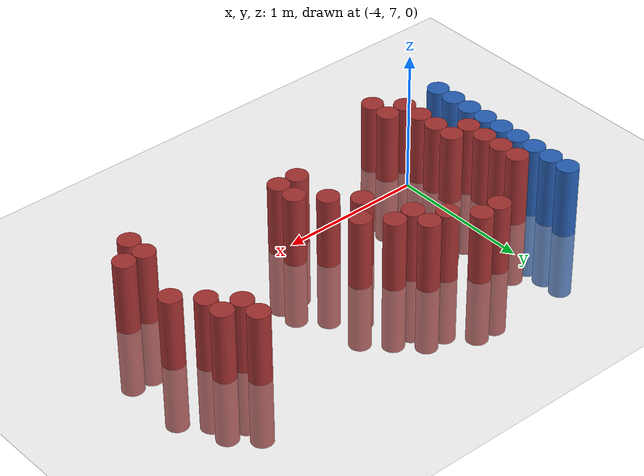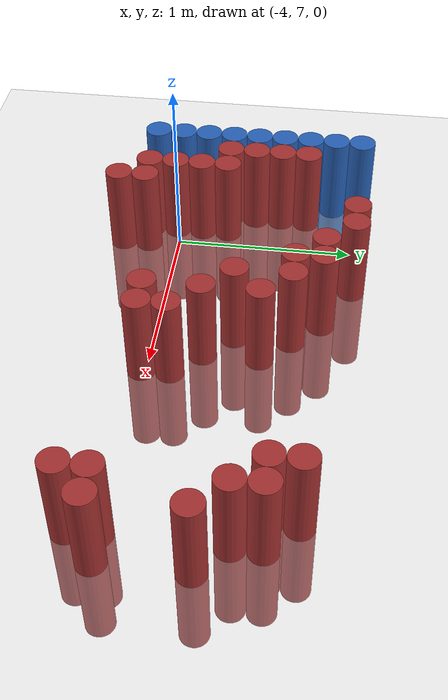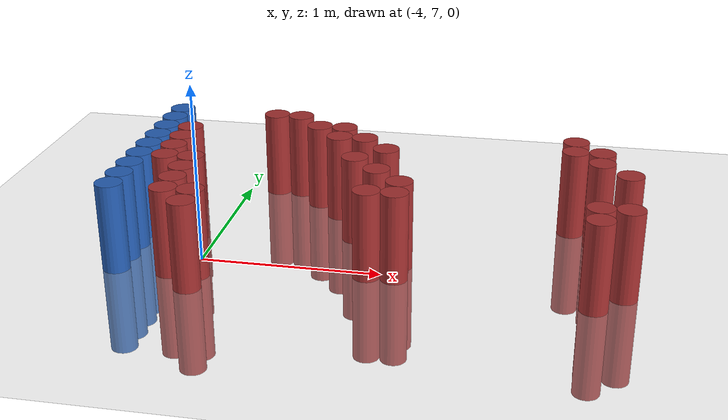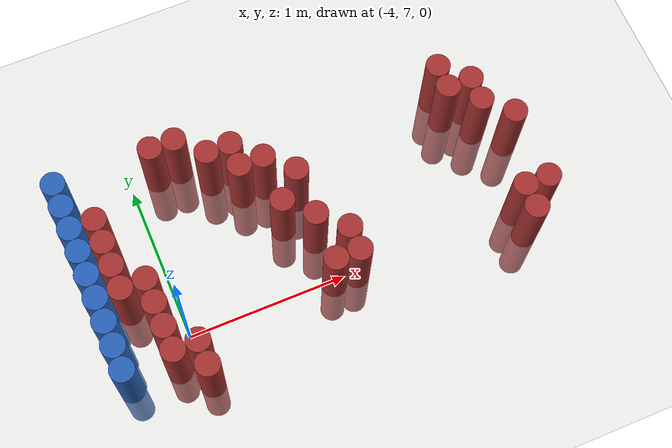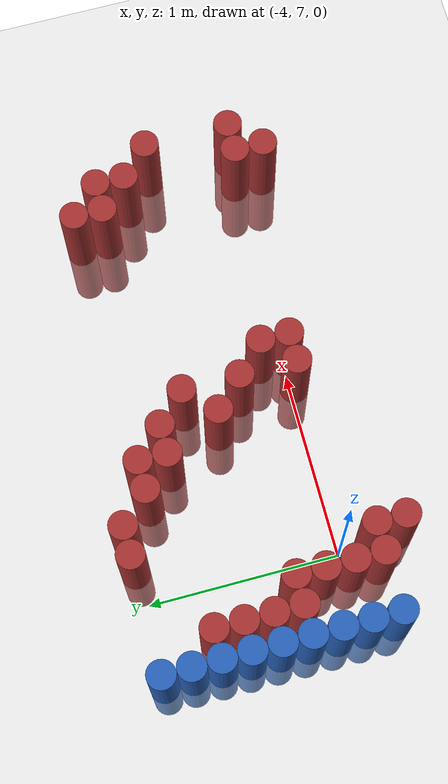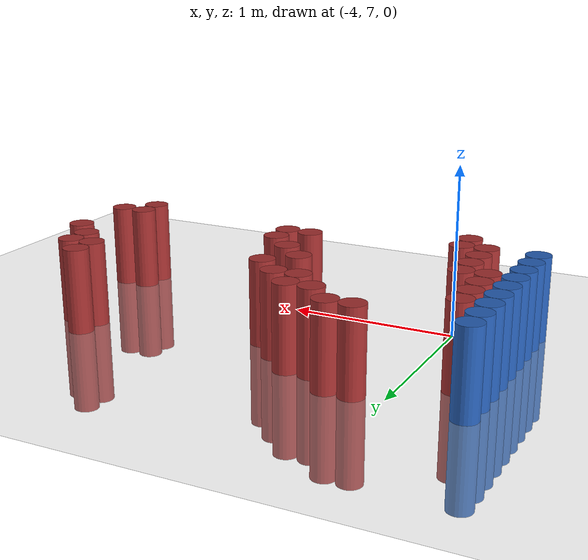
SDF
<sdf version="1.6">
 <world name="default">
  <model name="ground_plane">
   <static>1</static>
   <link name="link">
    <collision name="collision">
     <geometry><plane><normal>0 0 1</normal><size>100 100</size></plane></geometry>
     <surface><friction><ode><mu>100</mu><mu2>50</mu2></ode></friction></surface>
    </collision>
    <visual name="visual">
     <cast_shadows>0</cast_shadows>
     <geometry><plane><normal>0 0 1</normal><size>100 100</size></plane></geometry>
     <material>
      <script><uri>file://media/materials/scripts/gazebo.material</uri><name>Gazebo/Grey</name></script>
     </material>
    </visual>
   </link>
  </model>
  <model name="unit_cylinder_107">
   <static>1</static>
   <pose>-4.425000 6.825000 0.000000 0.000000 0.000000 0.000000</pose>
   <link name="link">
    <inertial>
     <mass>1</mass>
     <inertia><ixx>0.145833</ixx><ixy>0</ixy><ixz>0</ixz><iyy>0.145833</iyy><iyz>0</iyz><izz>0.125</izz></inertia>
    </inertial>
    <collision name="collision">
     <geometry><cylinder><radius>0.075000</radius><length>1</length></cylinder></geometry>
    </collision>
    <visual name="visual">
     <geometry><cylinder><radius>0.075000</radius><length>1</length></cylinder></geometry>
     <material>
      <ambient>0.152000 0.379000 0.720000 1</ambient>
      <diffuse>0.152000 0.379000 0.720000 1</diffuse>
     </material>
     <material>
      <script><name>Gazebo/Grey</name><uri>file://media/materials/scripts/gazebo.material</uri></script>
     </material>
    </visual>
    <sensor name="sensor_contact" type="contact"><contact><collision>collision</collision></contact></sensor>
   </link>
   <plugin filename="gz-sim-touchplugin-system" name="gz::sim::systems::TouchPlugin">
    <target>robot</target>
    <namespace>robot</namespace>
    <time>0.001</time>
    <enabled>true</enabled>
   </plugin>
  </model>
  <model name="unit_cylinder_108">
   <static>1</static>
   <pose>-4.425000 6.975000 0.000000 0.000000 0.000000 0.000000</pose>
   <link name="link">
    <inertial>
     <mass>1</mass>
     <inertia><ixx>0.145833</ixx><ixy>0</ixy><ixz>0</ixz><iyy>0.145833</iyy><iyz>0</iyz><izz>0.125</izz></inertia>
    </inertial>
    <collision name="collision">
     <geometry><cylinder><radius>0.075000</radius><length>1</length></cylinder></geometry>
    </collision>
    <visual name="visual">
     <geometry><cylinder><radius>0.075000</radius><length>1</length></cylinder></geometry>
     <material>
      <ambient>0.152000 0.379000 0.720000 1</ambient>
      <diffuse>0.152000 0.379000 0.720000 1</diffuse>
     </material>
     <material>
      <script><name>Gazebo/Grey</name><uri>file://media/materials/scripts/gazebo.material</uri></script>
     </material>
    </visual>
    <sensor name="sensor_contact" type="contact"><contact><collision>collision</collision></contact></sensor>
   </link>
   <plugin filename="gz-sim-touchplugin-system" name="gz::sim::systems::TouchPlugin">
    <target>robot</target>
    <namespace>robot</namespace>
    <time>0.001</time>
    <enabled>true</enabled>
   </plugin>
  </model>
  <model name="unit_cylinder_109">
   <static>1</static>
   <pose>-4.425000 7.125000 0.000000 0.000000 0.000000 0.000000</pose>
   <link name="link">
    <inertial>
     <mass>1</mass>
     <inertia><ixx>0.145833</ixx><ixy>0</ixy><ixz>0</ixz><iyy>0.145833</iyy><iyz>0</iyz><izz>0.125</izz></inertia>
    </inertial>
    <collision name="collision">
     <geometry><cylinder><radius>0.075000</radius><length>1</length></cylinder></geometry>
    </collision>
    <visual name="visual">
     <geometry><cylinder><radius>0.075000</radius><length>1</length></cylinder></geometry>
     <material>
      <ambient>0.152000 0.379000 0.720000 1</ambient>
      <diffuse>0.152000 0.379000 0.720000 1</diffuse>
     </material>
     <material>
      <script><name>Gazebo/Grey</name><uri>file://media/materials/scripts/gazebo.material</uri></script>
     </material>
    </visual>
    <sensor name="sensor_contact" type="contact"><contact><collision>collision</collision></contact></sensor>
   </link>
   <plugin filename="gz-sim-touchplugin-system" name="gz::sim::systems::TouchPlugin">
    <target>robot</target>
    <namespace>robot</namespace>
    <time>0.001</time>
    <enabled>true</enabled>
   </plugin>
  </model>
  <model name="unit_cylinder_110">
   <static>1</static>
   <pose>-4.425000 7.275000 0.000000 0.000000 0.000000 0.000000</pose>
   <link name="link">
    <inertial>
     <mass>1</mass>
     <inertia><ixx>0.145833</ixx><ixy>0</ixy><ixz>0</ixz><iyy>0.145833</iyy><iyz>0</iyz><izz>0.125</izz></inertia>
    </inertial>
    <collision name="collision">
     <geometry><cylinder><radius>0.075000</radius><length>1</length></cylinder></geometry>
    </collision>
    <visual name="visual">
     <geometry><cylinder><radius>0.075000</radius><length>1</length></cylinder></geometry>
     <material>
      <ambient>0.152000 0.379000 0.720000 1</ambient>
      <diffuse>0.152000 0.379000 0.720000 1</diffuse>
     </material>
     <material>
      <script><name>Gazebo/Grey</name><uri>file://media/materials/scripts/gazebo.material</uri></script>
     </material>
    </visual>
    <sensor name="sensor_contact" type="contact"><contact><collision>collision</collision></contact></sensor>
   </link>
   <plugin filename="gz-sim-touchplugin-system" name="gz::sim::systems::TouchPlugin">
    <target>robot</target>
    <namespace>robot</namespace>
    <time>0.001</time>
    <enabled>true</enabled>
   </plugin>
  </model>
  <model name="unit_cylinder_111">
   <static>1</static>
   <pose>-4.425000 7.425000 0.000000 0.000000 0.000000 0.000000</pose>
   <link name="link">
    <inertial>
     <mass>1</mass>
     <inertia><ixx>0.145833</ixx><ixy>0</ixy><ixz>0</ixz><iyy>0.145833</iyy><iyz>0</iyz><izz>0.125</izz></inertia>
    </inertial>
    <collision name="collision">
     <geometry><cylinder><radius>0.075000</radius><length>1</length></cylinder></geometry>
    </collision>
    <visual name="visual">
     <geometry><cylinder><radius>0.075000</radius><length>1</length></cylinder></geometry>
     <material>
      <ambient>0.152000 0.379000 0.720000 1</ambient>
      <diffuse>0.152000 0.379000 0.720000 1</diffuse>
     </material>
     <material>
      <script><name>Gazebo/Grey</name><uri>file://media/materials/scripts/gazebo.material</uri></script>
     </material>
    </visual>
    <sensor name="sensor_contact" type="contact"><contact><collision>collision</collision></contact></sensor>
   </link>
   <plugin filename="gz-sim-touchplugin-system" name="gz::sim::systems::TouchPlugin">
    <target>robot</target>
    <namespace>robot</namespace>
    <time>0.001</time>
    <enabled>true</enabled>
   </plugin>
  </model>
  <model name="unit_cylinder_112">
   <static>1</static>
   <pose>-4.425000 7.575000 0.000000 0.000000 0.000000 0.000000</pose>
   <link name="link">
    <inertial>
     <mass>1</mass>
     <inertia><ixx>0.145833</ixx><ixy>0</ixy><ixz>0</ixz><iyy>0.145833</iyy><iyz>0</iyz><izz>0.125</izz></inertia>
    </inertial>
    <collision name="collision">
     <geometry><cylinder><radius>0.075000</radius><length>1</length></cylinder></geometry>
    </collision>
    <visual name="visual">
     <geometry><cylinder><radius>0.075000</radius><length>1</length></cylinder></geometry>
     <material>
      <ambient>0.152000 0.379000 0.720000 1</ambient>
      <diffuse>0.152000 0.379000 0.720000 1</diffuse>
     </material>
     <material>
      <script><name>Gazebo/Grey</name><uri>file://media/materials/scripts/gazebo.material</uri></script>
     </material>
    </visual>
    <sensor name="sensor_contact" type="contact"><contact><collision>collision</collision></contact></sensor>
   </link>
   <plugin filename="gz-sim-touchplugin-system" name="gz::sim::systems::TouchPlugin">
    <target>robot</target>
    <namespace>robot</namespace>
    <time>0.001</time>
    <enabled>true</enabled>
   </plugin>
  </model>
  <model name="unit_cylinder_113">
   <static>1</static>
   <pose>-4.425000 7.725000 0.000000 0.000000 0.000000 0.000000</pose>
   <link name="link">
    <inertial>
     <mass>1</mass>
     <inertia><ixx>0.145833</ixx><ixy>0</ixy><ixz>0</ixz><iyy>0.145833</iyy><iyz>0</iyz><izz>0.125</izz></inertia>
    </inertial>
    <collision name="collision">
     <geometry><cylinder><radius>0.075000</radius><length>1</length></cylinder></geometry>
    </collision>
    <visual name="visual">
     <geometry><cylinder><radius>0.075000</radius><length>1</length></cylinder></geometry>
     <material>
      <ambient>0.152000 0.379000 0.720000 1</ambient>
      <diffuse>0.152000 0.379000 0.720000 1</diffuse>
     </material>
     <material>
      <script><name>Gazebo/Grey</name><uri>file://media/materials/scripts/gazebo.material</uri></script>
     </material>
    </visual>
    <sensor name="sensor_contact" type="contact"><contact><collision>collision</collision></contact></sensor>
   </link>
   <plugin filename="gz-sim-touchplugin-system" name="gz::sim::systems::TouchPlugin">
    <target>robot</target>
    <namespace>robot</namespace>
    <time>0.001</time>
    <enabled>true</enabled>
   </plugin>
  </model>
  <model name="unit_cylinder_114">
   <static>1</static>
   <pose>-4.425000 7.875000 0.000000 0.000000 0.000000 0.000000</pose>
   <link name="link">
    <inertial>
     <mass>1</mass>
     <inertia><ixx>0.145833</ixx><ixy>0</ixy><ixz>0</ixz><iyy>0.145833</iyy><iyz>0</iyz><izz>0.125</izz></inertia>
    </inertial>
    <collision name="collision">
     <geometry><cylinder><radius>0.075000</radius><length>1</length></cylinder></geometry>
    </collision>
    <visual name="visual">
     <geometry><cylinder><radius>0.075000</radius><length>1</length></cylinder></geometry>
     <material>
      <ambient>0.152000 0.379000 0.720000 1</ambient>
      <diffuse>0.152000 0.379000 0.720000 1</diffuse>
     </material>
     <material>
      <script><name>Gazebo/Grey</name><uri>file://media/materials/scripts/gazebo.material</uri></script>
     </material>
    </visual>
    <sensor name="sensor_contact" type="contact"><contact><collision>collision</collision></contact></sensor>
   </link>
   <plugin filename="gz-sim-touchplugin-system" name="gz::sim::systems::TouchPlugin">
    <target>robot</target>
    <namespace>robot</namespace>
    <time>0.001</time>
    <enabled>true</enabled>
   </plugin>
  </model>
  <model name="unit_cylinder_115">
   <static>1</static>
   <pose>-4.425000 8.025000 0.000000 0.000000 0.000000 0.000000</pose>
   <link name="link">
    <inertial>
     <mass>1</mass>
     <inertia><ixx>0.145833</ixx><ixy>0</ixy><ixz>0</ixz><iyy>0.145833</iyy><iyz>0</iyz><izz>0.125</izz></inertia>
    </inertial>
    <collision name="collision">
     <geometry><cylinder><radius>0.075000</radius><length>1</length></cylinder></geometry>
    </collision>
    <visual name="visual">
     <geometry><cylinder><radius>0.075000</radius><length>1</length></cylinder></geometry>
     <material>
      <ambient>0.152000 0.379000 0.720000 1</ambient>
      <diffuse>0.152000 0.379000 0.720000 1</diffuse>
     </material>
     <material>
      <script><name>Gazebo/Grey</name><uri>file://media/materials/scripts/gazebo.material</uri></script>
     </material>
    </visual>
    <sensor name="sensor_contact" type="contact"><contact><collision>collision</collision></contact></sensor>
   </link>
   <plugin filename="gz-sim-touchplugin-system" name="gz::sim::systems::TouchPlugin">
    <target>robot</target>
    <namespace>robot</namespace>
    <time>0.001</time>
    <enabled>true</enabled>
   </plugin>
  </model>
  <model name="unit_cylinder_131">
   <static>1</static>
   <pose>-4.275000 7.275000 0.000000 0.000000 0.000000 0.000000</pose>
   <link name="link">
    <inertial>
     <mass>1</mass>
     <inertia><ixx>0.145833</ixx><ixy>0</ixy><ixz>0</ixz><iyy>0.145833</iyy><iyz>0</iyz><izz>0.125</izz></inertia>
    </inertial>
    <collision name="collision">
     <geometry><cylinder><radius>0.075000</radius><length>1</length></cylinder></geometry>
    </collision>
    <visual name="visual">
     <geometry><cylinder><radius>0.075000</radius><length>1</length></cylinder></geometry>
     <material>
      <ambient>0.648000 0.192000 0.192000 1</ambient>
      <diffuse>0.648000 0.192000 0.192000 1</diffuse>
     </material>
     <material>
      <script><name>Gazebo/Grey</name><uri>file://media/materials/scripts/gazebo.material</uri></script>
     </material>
    </visual>
    <sensor name="sensor_contact" type="contact"><contact><collision>collision</collision></contact></sensor>
   </link>
   <plugin filename="gz-sim-touchplugin-system" name="gz::sim::systems::TouchPlugin">
    <target>robot</target>
    <namespace>robot</namespace>
    <time>0.001</time>
    <enabled>true</enabled>
   </plugin>
  </model>
  <model name="unit_cylinder_132">
   <static>1</static>
   <pose>-4.275000 7.425000 0.000000 0.000000 0.000000 0.000000</pose>
   <link name="link">
    <inertial>
     <mass>1</mass>
     <inertia><ixx>0.145833</ixx><ixy>0</ixy><ixz>0</ixz><iyy>0.145833</iyy><iyz>0</iyz><izz>0.125</izz></inertia>
    </inertial>
    <collision name="collision">
     <geometry><cylinder><radius>0.075000</radius><length>1</length></cylinder></geometry>
    </collision>
    <visual name="visual">
     <geometry><cylinder><radius>0.075000</radius><length>1</length></cylinder></geometry>
     <material>
      <ambient>0.648000 0.192000 0.192000 1</ambient>
      <diffuse>0.648000 0.192000 0.192000 1</diffuse>
     </material>
     <material>
      <script><name>Gazebo/Grey</name><uri>file://media/materials/scripts/gazebo.material</uri></script>
     </material>
    </visual>
    <sensor name="sensor_contact" type="contact"><contact><collision>collision</collision></contact></sensor>
   </link>
   <plugin filename="gz-sim-touchplugin-system" name="gz::sim::systems::TouchPlugin">
    <target>robot</target>
    <namespace>robot</namespace>
    <time>0.001</time>
    <enabled>true</enabled>
   </plugin>
  </model>
  <model name="unit_cylinder_133">
   <static>1</static>
   <pose>-4.275000 7.575000 0.000000 0.000000 0.000000 0.000000</pose>
   <link name="link">
    <inertial>
     <mass>1</mass>
     <inertia><ixx>0.145833</ixx><ixy>0</ixy><ixz>0</ixz><iyy>0.145833</iyy><iyz>0</iyz><izz>0.125</izz></inertia>
    </inertial>
    <collision name="collision">
     <geometry><cylinder><radius>0.075000</radius><length>1</length></cylinder></geometry>
    </collision>
    <visual name="visual">
     <geometry><cylinder><radius>0.075000</radius><length>1</length></cylinder></geometry>
     <material>
      <ambient>0.648000 0.192000 0.192000 1</ambient>
      <diffuse>0.648000 0.192000 0.192000 1</diffuse>
     </material>
     <material>
      <script><name>Gazebo/Grey</name><uri>file://media/materials/scripts/gazebo.material</uri></script>
     </material>
    </visual>
    <sensor name="sensor_contact" type="contact"><contact><collision>collision</collision></contact></sensor>
   </link>
   <plugin filename="gz-sim-touchplugin-system" name="gz::sim::systems::TouchPlugin">
    <target>robot</target>
    <namespace>robot</namespace>
    <time>0.001</time>
    <enabled>true</enabled>
   </plugin>
  </model>
  <model name="unit_cylinder_134">
   <static>1</static>
   <pose>-4.275000 7.725000 0.000000 0.000000 0.000000 0.000000</pose>
   <link name="link">
    <inertial>
     <mass>1</mass>
     <inertia><ixx>0.145833</ixx><ixy>0</ixy><ixz>0</ixz><iyy>0.145833</iyy><iyz>0</iyz><izz>0.125</izz></inertia>
    </inertial>
    <collision name="collision">
     <geometry><cylinder><radius>0.075000</radius><length>1</length></cylinder></geometry>
    </collision>
    <visual name="visual">
     <geometry><cylinder><radius>0.075000</radius><length>1</length></cylinder></geometry>
     <material>
      <ambient>0.648000 0.192000 0.192000 1</ambient>
      <diffuse>0.648000 0.192000 0.192000 1</diffuse>
     </material>
     <material>
      <script><name>Gazebo/Grey</name><uri>file://media/materials/scripts/gazebo.material</uri></script>
     </material>
    </visual>
    <sensor name="sensor_contact" type="contact"><contact><collision>collision</collision></contact></sensor>
   </link>
   <plugin filename="gz-sim-touchplugin-system" name="gz::sim::systems::TouchPlugin">
    <target>robot</target>
    <namespace>robot</namespace>
    <time>0.001</time>
    <enabled>true</enabled>
   </plugin>
  </model>
  <model name="unit_cylinder_140">
   <static>1</static>
   <pose>-4.125000 6.825000 0.000000 0.000000 0.000000 0.000000</pose>
   <link name="link">
    <inertial>
     <mass>1</mass>
     <inertia><ixx>0.145833</ixx><ixy>0</ixy><ixz>0</ixz><iyy>0.145833</iyy><iyz>0</iyz><izz>0.125</izz></inertia>
    </inertial>
    <collision name="collision">
     <geometry><cylinder><radius>0.075000</radius><length>1</length></cylinder></geometry>
    </collision>
    <visual name="visual">
     <geometry><cylinder><radius>0.075000</radius><length>1</length></cylinder></geometry>
     <material>
      <ambient>0.648000 0.192000 0.192000 1</ambient>
      <diffuse>0.648000 0.192000 0.192000 1</diffuse>
     </material>
     <material>
      <script><name>Gazebo/Grey</name><uri>file://media/materials/scripts/gazebo.material</uri></script>
     </material>
    </visual>
    <sensor name="sensor_contact" type="contact"><contact><collision>collision</collision></contact></sensor>
   </link>
   <plugin filename="gz-sim-touchplugin-system" name="gz::sim::systems::TouchPlugin">
    <target>robot</target>
    <namespace>robot</namespace>
    <time>0.001</time>
    <enabled>true</enabled>
   </plugin>
  </model>
  <model name="unit_cylinder_141">
   <static>1</static>
   <pose>-4.125000 6.975000 0.000000 0.000000 0.000000 0.000000</pose>
   <link name="link">
    <inertial>
     <mass>1</mass>
     <inertia><ixx>0.145833</ixx><ixy>0</ixy><ixz>0</ixz><iyy>0.145833</iyy><iyz>0</iyz><izz>0.125</izz></inertia>
    </inertial>
    <collision name="collision">
     <geometry><cylinder><radius>0.075000</radius><length>1</length></cylinder></geometry>
    </collision>
    <visual name="visual">
     <geometry><cylinder><radius>0.075000</radius><length>1</length></cylinder></geometry>
     <material>
      <ambient>0.648000 0.192000 0.192000 1</ambient>
      <diffuse>0.648000 0.192000 0.192000 1</diffuse>
     </material>
     <material>
      <script><name>Gazebo/Grey</name><uri>file://media/materials/scripts/gazebo.material</uri></script>
     </material>
    </visual>
    <sensor name="sensor_contact" type="contact"><contact><collision>collision</collision></contact></sensor>
   </link>
   <plugin filename="gz-sim-touchplugin-system" name="gz::sim::systems::TouchPlugin">
    <target>robot</target>
    <namespace>robot</namespace>
    <time>0.001</time>
    <enabled>true</enabled>
   </plugin>
  </model>
  <model name="unit_cylinder_142">
   <static>1</static>
   <pose>-4.125000 7.125000 0.000000 0.000000 0.000000 0.000000</pose>
   <link name="link">
    <inertial>
     <mass>1</mass>
     <inertia><ixx>0.145833</ixx><ixy>0</ixy><ixz>0</ixz><iyy>0.145833</iyy><iyz>0</iyz><izz>0.125</izz></inertia>
    </inertial>
    <collision name="collision">
     <geometry><cylinder><radius>0.075000</radius><length>1</length></cylinder></geometry>
    </collision>
    <visual name="visual">
     <geometry><cylinder><radius>0.075000</radius><length>1</length></cylinder></geometry>
     <material>
      <ambient>0.648000 0.192000 0.192000 1</ambient>
      <diffuse>0.648000 0.192000 0.192000 1</diffuse>
     </material>
     <material>
      <script><name>Gazebo/Grey</name><uri>file://media/materials/scripts/gazebo.material</uri></script>
     </material>
    </visual>
    <sensor name="sensor_contact" type="contact"><contact><collision>collision</collision></contact></sensor>
   </link>
   <plugin filename="gz-sim-touchplugin-system" name="gz::sim::systems::TouchPlugin">
    <target>robot</target>
    <namespace>robot</namespace>
    <time>0.001</time>
    <enabled>true</enabled>
   </plugin>
  </model>
  <model name="unit_cylinder_143">
   <static>1</static>
   <pose>-4.125000 7.275000 0.000000 0.000000 0.000000 0.000000</pose>
   <link name="link">
    <inertial>
     <mass>1</mass>
     <inertia><ixx>0.145833</ixx><ixy>0</ixy><ixz>0</ixz><iyy>0.145833</iyy><iyz>0</iyz><izz>0.125</izz></inertia>
    </inertial>
    <collision name="collision">
     <geometry><cylinder><radius>0.075000</radius><length>1</length></cylinder></geometry>
    </collision>
    <visual name="visual">
     <geometry><cylinder><radius>0.075000</radius><length>1</length></cylinder></geometry>
     <material>
      <ambient>0.648000 0.192000 0.192000 1</ambient>
      <diffuse>0.648000 0.192000 0.192000 1</diffuse>
     </material>
     <material>
      <script><name>Gazebo/Grey</name><uri>file://media/materials/scripts/gazebo.material</uri></script>
     </material>
    </visual>
    <sensor name="sensor_contact" type="contact"><contact><collision>collision</collision></contact></sensor>
   </link>
   <plugin filename="gz-sim-touchplugin-system" name="gz::sim::systems::TouchPlugin">
    <target>robot</target>
    <namespace>robot</namespace>
    <time>0.001</time>
    <enabled>true</enabled>
   </plugin>
  </model>
  <model name="unit_cylinder_147">
   <static>1</static>
   <pose>-3.975000 6.675000 0.000000 0.000000 0.000000 0.000000</pose>
   <link name="link">
    <inertial>
     <mass>1</mass>
     <inertia><ixx>0.145833</ixx><ixy>0</ixy><ixz>0</ixz><iyy>0.145833</iyy><iyz>0</iyz><izz>0.125</izz></inertia>
    </inertial>
    <collision name="collision">
     <geometry><cylinder><radius>0.075000</radius><length>1</length></cylinder></geometry>
    </collision>
    <visual name="visual">
     <geometry><cylinder><radius>0.075000</radius><length>1</length></cylinder></geometry>
     <material>
      <ambient>0.648000 0.192000 0.192000 1</ambient>
      <diffuse>0.648000 0.192000 0.192000 1</diffuse>
     </material>
     <material>
      <script><name>Gazebo/Grey</name><uri>file://media/materials/scripts/gazebo.material</uri></script>
     </material>
    </visual>
    <sensor name="sensor_contact" type="contact"><contact><collision>collision</collision></contact></sensor>
   </link>
   <plugin filename="gz-sim-touchplugin-system" name="gz::sim::systems::TouchPlugin">
    <target>robot</target>
    <namespace>robot</namespace>
    <time>0.001</time>
    <enabled>true</enabled>
   </plugin>
  </model>
  <model name="unit_cylinder_148">
   <static>1</static>
   <pose>-3.975000 6.825000 0.000000 0.000000 0.000000 0.000000</pose>
   <link name="link">
    <inertial>
     <mass>1</mass>
     <inertia><ixx>0.145833</ixx><ixy>0</ixy><ixz>0</ixz><iyy>0.145833</iyy><iyz>0</iyz><izz>0.125</izz></inertia>
    </inertial>
    <collision name="collision">
     <geometry><cylinder><radius>0.075000</radius><length>1</length></cylinder></geometry>
    </collision>
    <visual name="visual">
     <geometry><cylinder><radius>0.075000</radius><length>1</length></cylinder></geometry>
     <material>
      <ambient>0.648000 0.192000 0.192000 1</ambient>
      <diffuse>0.648000 0.192000 0.192000 1</diffuse>
     </material>
     <material>
      <script><name>Gazebo/Grey</name><uri>file://media/materials/scripts/gazebo.material</uri></script>
     </material>
    </visual>
    <sensor name="sensor_contact" type="contact"><contact><collision>collision</collision></contact></sensor>
   </link>
   <plugin filename="gz-sim-touchplugin-system" name="gz::sim::systems::TouchPlugin">
    <target>robot</target>
    <namespace>robot</namespace>
    <time>0.001</time>
    <enabled>true</enabled>
   </plugin>
  </model>
  <model name="unit_cylinder_157">
   <static>1</static>
   <pose>-3.825000 8.025000 0.000000 0.000000 0.000000 0.000000</pose>
   <link name="link">
    <inertial>
     <mass>1</mass>
     <inertia><ixx>0.145833</ixx><ixy>0</ixy><ixz>0</ixz><iyy>0.145833</iyy><iyz>0</iyz><izz>0.125</izz></inertia>
    </inertial>
    <collision name="collision">
     <geometry><cylinder><radius>0.075000</radius><length>1</length></cylinder></geometry>
    </collision>
    <visual name="visual">
     <geometry><cylinder><radius>0.075000</radius><length>1</length></cylinder></geometry>
     <material>
      <ambient>0.648000 0.192000 0.192000 1</ambient>
      <diffuse>0.648000 0.192000 0.192000 1</diffuse>
     </material>
     <material>
      <script><name>Gazebo/Grey</name><uri>file://media/materials/scripts/gazebo.material</uri></script>
     </material>
    </visual>
    <sensor name="sensor_contact" type="contact"><contact><collision>collision</collision></contact></sensor>
   </link>
   <plugin filename="gz-sim-touchplugin-system" name="gz::sim::systems::TouchPlugin">
    <target>robot</target>
    <namespace>robot</namespace>
    <time>0.001</time>
    <enabled>true</enabled>
   </plugin>
  </model>
  <model name="unit_cylinder_166">
   <static>1</static>
   <pose>-3.675000 8.025000 0.000000 0.000000 0.000000 0.000000</pose>
   <link name="link">
    <inertial>
     <mass>1</mass>
     <inertia><ixx>0.145833</ixx><ixy>0</ixy><ixz>0</ixz><iyy>0.145833</iyy><iyz>0</iyz><izz>0.125</izz></inertia>
    </inertial>
    <collision name="collision">
     <geometry><cylinder><radius>0.075000</radius><length>1</length></cylinder></geometry>
    </collision>
    <visual name="visual">
     <geometry><cylinder><radius>0.075000</radius><length>1</length></cylinder></geometry>
     <material>
      <ambient>0.648000 0.192000 0.192000 1</ambient>
      <diffuse>0.648000 0.192000 0.192000 1</diffuse>
     </material>
     <material>
      <script><name>Gazebo/Grey</name><uri>file://media/materials/scripts/gazebo.material</uri></script>
     </material>
    </visual>
    <sensor name="sensor_contact" type="contact"><contact><collision>collision</collision></contact></sensor>
   </link>
   <plugin filename="gz-sim-touchplugin-system" name="gz::sim::systems::TouchPlugin">
    <target>robot</target>
    <namespace>robot</namespace>
    <time>0.001</time>
    <enabled>true</enabled>
   </plugin>
  </model>
  <model name="unit_cylinder_171">
   <static>1</static>
   <pose>-3.525000 7.875000 0.000000 0.000000 0.000000 0.000000</pose>
   <link name="link">
    <inertial>
     <mass>1</mass>
     <inertia><ixx>0.145833</ixx><ixy>0</ixy><ixz>0</ixz><iyy>0.145833</iyy><iyz>0</iyz><izz>0.125</izz></inertia>
    </inertial>
    <collision name="collision">
     <geometry><cylinder><radius>0.075000</radius><length>1</length></cylinder></geometry>
    </collision>
    <visual name="visual">
     <geometry><cylinder><radius>0.075000</radius><length>1</length></cylinder></geometry>
     <material>
      <ambient>0.648000 0.192000 0.192000 1</ambient>
      <diffuse>0.648000 0.192000 0.192000 1</diffuse>
     </material>
     <material>
      <script><name>Gazebo/Grey</name><uri>file://media/materials/scripts/gazebo.material</uri></script>
     </material>
    </visual>
    <sensor name="sensor_contact" type="contact"><contact><collision>collision</collision></contact></sensor>
   </link>
   <plugin filename="gz-sim-touchplugin-system" name="gz::sim::systems::TouchPlugin">
    <target>robot</target>
    <namespace>robot</namespace>
    <time>0.001</time>
    <enabled>true</enabled>
   </plugin>
  </model>
  <model name="unit_cylinder_175">
   <static>1</static>
   <pose>-3.375000 7.725000 0.000000 0.000000 0.000000 0.000000</pose>
   <link name="link">
    <inertial>
     <mass>1</mass>
     <inertia><ixx>0.145833</ixx><ixy>0</ixy><ixz>0</ixz><iyy>0.145833</iyy><iyz>0</iyz><izz>0.125</izz></inertia>
    </inertial>
    <collision name="collision">
     <geometry><cylinder><radius>0.075000</radius><length>1</length></cylinder></geometry>
    </collision>
    <visual name="visual">
     <geometry><cylinder><radius>0.075000</radius><length>1</length></cylinder></geometry>
     <material>
      <ambient>0.648000 0.192000 0.192000 1</ambient>
      <diffuse>0.648000 0.192000 0.192000 1</diffuse>
     </material>
     <material>
      <script><name>Gazebo/Grey</name><uri>file://media/materials/scripts/gazebo.material</uri></script>
     </material>
    </visual>
    <sensor name="sensor_contact" type="contact"><contact><collision>collision</collision></contact></sensor>
   </link>
   <plugin filename="gz-sim-touchplugin-system" name="gz::sim::systems::TouchPlugin">
    <target>robot</target>
    <namespace>robot</namespace>
    <time>0.001</time>
    <enabled>true</enabled>
   </plugin>
  </model>
  <model name="unit_cylinder_176">
   <static>1</static>
   <pose>-3.375000 7.875000 0.000000 0.000000 0.000000 0.000000</pose>
   <link name="link">
    <inertial>
     <mass>1</mass>
     <inertia><ixx>0.145833</ixx><ixy>0</ixy><ixz>0</ixz><iyy>0.145833</iyy><iyz>0</iyz><izz>0.125</izz></inertia>
    </inertial>
    <collision name="collision">
     <geometry><cylinder><radius>0.075000</radius><length>1</length></cylinder></geometry>
    </collision>
    <visual name="visual">
     <geometry><cylinder><radius>0.075000</radius><length>1</length></cylinder></geometry>
     <material>
      <ambient>0.648000 0.192000 0.192000 1</ambient>
      <diffuse>0.648000 0.192000 0.192000 1</diffuse>
     </material>
     <material>
      <script><name>Gazebo/Grey</name><uri>file://media/materials/scripts/gazebo.material</uri></script>
     </material>
    </visual>
    <sensor name="sensor_contact" type="contact"><contact><collision>collision</collision></contact></sensor>
   </link>
   <plugin filename="gz-sim-touchplugin-system" name="gz::sim::systems::TouchPlugin">
    <target>robot</target>
    <namespace>robot</namespace>
    <time>0.001</time>
    <enabled>true</enabled>
   </plugin>
  </model>
  <model name="unit_cylinder_178">
   <static>1</static>
   <pose>-3.225000 7.425000 0.000000 0.000000 0.000000 0.000000</pose>
   <link name="link">
    <inertial>
     <mass>1</mass>
     <inertia><ixx>0.145833</ixx><ixy>0</ixy><ixz>0</ixz><iyy>0.145833</iyy><iyz>0</iyz><izz>0.125</izz></inertia>
    </inertial>
    <collision name="collision">
     <geometry><cylinder><radius>0.075000</radius><length>1</length></cylinder></geometry>
    </collision>
    <visual name="visual">
     <geometry><cylinder><radius>0.075000</radius><length>1</length></cylinder></geometry>
     <material>
      <ambient>0.648000 0.192000 0.192000 1</ambient>
      <diffuse>0.648000 0.192000 0.192000 1</diffuse>
     </material>
     <material>
      <script><name>Gazebo/Grey</name><uri>file://media/materials/scripts/gazebo.material</uri></script>
     </material>
    </visual>
    <sensor name="sensor_contact" type="contact"><contact><collision>collision</collision></contact></sensor>
   </link>
   <plugin filename="gz-sim-touchplugin-system" name="gz::sim::systems::TouchPlugin">
    <target>robot</target>
    <namespace>robot</namespace>
    <time>0.001</time>
    <enabled>true</enabled>
   </plugin>
  </model>
  <model name="unit_cylinder_179">
   <static>1</static>
   <pose>-3.225000 7.725000 0.000000 0.000000 0.000000 0.000000</pose>
   <link name="link">
    <inertial>
     <mass>1</mass>
     <inertia><ixx>0.145833</ixx><ixy>0</ixy><ixz>0</ixz><iyy>0.145833</iyy><iyz>0</iyz><izz>0.125</izz></inertia>
    </inertial>
    <collision name="collision">
     <geometry><cylinder><radius>0.075000</radius><length>1</length></cylinder></geometry>
    </collision>
    <visual name="visual">
     <geometry><cylinder><radius>0.075000</radius><length>1</length></cylinder></geometry>
     <material>
      <ambient>0.648000 0.192000 0.192000 1</ambient>
      <diffuse>0.648000 0.192000 0.192000 1</diffuse>
     </material>
     <material>
      <script><name>Gazebo/Grey</name><uri>file://media/materials/scripts/gazebo.material</uri></script>
     </material>
    </visual>
    <sensor name="sensor_contact" type="contact"><contact><collision>collision</collision></contact></sensor>
   </link>
   <plugin filename="gz-sim-touchplugin-system" name="gz::sim::systems::TouchPlugin">
    <target>robot</target>
    <namespace>robot</namespace>
    <time>0.001</time>
    <enabled>true</enabled>
   </plugin>
  </model>
  <model name="unit_cylinder_181">
   <static>1</static>
   <pose>-3.075000 6.975000 0.000000 0.000000 0.000000 0.000000</pose>
   <link name="link">
    <inertial>
     <mass>1</mass>
     <inertia><ixx>0.145833</ixx><ixy>0</ixy><ixz>0</ixz><iyy>0.145833</iyy><iyz>0</iyz><izz>0.125</izz></inertia>
    </inertial>
    <collision name="collision">
     <geometry><cylinder><radius>0.075000</radius><length>1</length></cylinder></geometry>
    </collision>
    <visual name="visual">
     <geometry><cylinder><radius>0.075000</radius><length>1</length></cylinder></geometry>
     <material>
      <ambient>0.648000 0.192000 0.192000 1</ambient>
      <diffuse>0.648000 0.192000 0.192000 1</diffuse>
     </material>
     <material>
      <script><name>Gazebo/Grey</name><uri>file://media/materials/scripts/gazebo.material</uri></script>
     </material>
    </visual>
    <sensor name="sensor_contact" type="contact"><contact><collision>collision</collision></contact></sensor>
   </link>
   <plugin filename="gz-sim-touchplugin-system" name="gz::sim::systems::TouchPlugin">
    <target>robot</target>
    <namespace>robot</namespace>
    <time>0.001</time>
    <enabled>true</enabled>
   </plugin>
  </model>
  <model name="unit_cylinder_182">
   <static>1</static>
   <pose>-3.075000 7.275000 0.000000 0.000000 0.000000 0.000000</pose>
   <link name="link">
    <inertial>
     <mass>1</mass>
     <inertia><ixx>0.145833</ixx><ixy>0</ixy><ixz>0</ixz><iyy>0.145833</iyy><iyz>0</iyz><izz>0.125</izz></inertia>
    </inertial>
    <collision name="collision">
     <geometry><cylinder><radius>0.075000</radius><length>1</length></cylinder></geometry>
    </collision>
    <visual name="visual">
     <geometry><cylinder><radius>0.075000</radius><length>1</length></cylinder></geometry>
     <material>
      <ambient>0.648000 0.192000 0.192000 1</ambient>
      <diffuse>0.648000 0.192000 0.192000 1</diffuse>
     </material>
     <material>
      <script><name>Gazebo/Grey</name><uri>file://media/materials/scripts/gazebo.material</uri></script>
     </material>
    </visual>
    <sensor name="sensor_contact" type="contact"><contact><collision>collision</collision></contact></sensor>
   </link>
   <plugin filename="gz-sim-touchplugin-system" name="gz::sim::systems::TouchPlugin">
    <target>robot</target>
    <namespace>robot</namespace>
    <time>0.001</time>
    <enabled>true</enabled>
   </plugin>
  </model>
  <model name="unit_cylinder_183">
   <static>1</static>
   <pose>-3.075000 7.575000 0.000000 0.000000 0.000000 0.000000</pose>
   <link name="link">
    <inertial>
     <mass>1</mass>
     <inertia><ixx>0.145833</ixx><ixy>0</ixy><ixz>0</ixz><iyy>0.145833</iyy><iyz>0</iyz><izz>0.125</izz></inertia>
    </inertial>
    <collision name="collision">
     <geometry><cylinder><radius>0.075000</radius><length>1</length></cylinder></geometry>
    </collision>
    <visual name="visual">
     <geometry><cylinder><radius>0.075000</radius><length>1</length></cylinder></geometry>
     <material>
      <ambient>0.648000 0.192000 0.192000 1</ambient>
      <diffuse>0.648000 0.192000 0.192000 1</diffuse>
     </material>
     <material>
      <script><name>Gazebo/Grey</name><uri>file://media/materials/scripts/gazebo.material</uri></script>
     </material>
    </visual>
    <sensor name="sensor_contact" type="contact"><contact><collision>collision</collision></contact></sensor>
   </link>
   <plugin filename="gz-sim-touchplugin-system" name="gz::sim::systems::TouchPlugin">
    <target>robot</target>
    <namespace>robot</namespace>
    <time>0.001</time>
    <enabled>true</enabled>
   </plugin>
  </model>
  <model name="unit_cylinder_187">
   <static>1</static>
   <pose>-2.925000 6.975000 0.000000 0.000000 0.000000 0.000000</pose>
   <link name="link">
    <inertial>
     <mass>1</mass>
     <inertia><ixx>0.145833</ixx><ixy>0</ixy><ixz>0</ixz><iyy>0.145833</iyy><iyz>0</iyz><izz>0.125</izz></inertia>
    </inertial>
    <collision name="collision">
     <geometry><cylinder><radius>0.075000</radius><length>1</length></cylinder></geometry>
    </collision>
    <visual name="visual">
     <geometry><cylinder><radius>0.075000</radius><length>1</length></cylinder></geometry>
     <material>
      <ambient>0.648000 0.192000 0.192000 1</ambient>
      <diffuse>0.648000 0.192000 0.192000 1</diffuse>
     </material>
     <material>
      <script><name>Gazebo/Grey</name><uri>file://media/materials/scripts/gazebo.material</uri></script>
     </material>
    </visual>
    <sensor name="sensor_contact" type="contact"><contact><collision>collision</collision></contact></sensor>
   </link>
   <plugin filename="gz-sim-touchplugin-system" name="gz::sim::systems::TouchPlugin">
    <target>robot</target>
    <namespace>robot</namespace>
    <time>0.001</time>
    <enabled>true</enabled>
   </plugin>
  </model>
  <model name="unit_cylinder_188">
   <static>1</static>
   <pose>-2.925000 7.125000 0.000000 0.000000 0.000000 0.000000</pose>
   <link name="link">
    <inertial>
     <mass>1</mass>
     <inertia><ixx>0.145833</ixx><ixy>0</ixy><ixz>0</ixz><iyy>0.145833</iyy><iyz>0</iyz><izz>0.125</izz></inertia>
    </inertial>
    <collision name="collision">
     <geometry><cylinder><radius>0.075000</radius><length>1</length></cylinder></geometry>
    </collision>
    <visual name="visual">
     <geometry><cylinder><radius>0.075000</radius><length>1</length></cylinder></geometry>
     <material>
      <ambient>0.648000 0.192000 0.192000 1</ambient>
      <diffuse>0.648000 0.192000 0.192000 1</diffuse>
     </material>
     <material>
      <script><name>Gazebo/Grey</name><uri>file://media/materials/scripts/gazebo.material</uri></script>
     </material>
    </visual>
    <sensor name="sensor_contact" type="contact"><contact><collision>collision</collision></contact></sensor>
   </link>
   <plugin filename="gz-sim-touchplugin-system" name="gz::sim::systems::TouchPlugin">
    <target>robot</target>
    <namespace>robot</namespace>
    <time>0.001</time>
    <enabled>true</enabled>
   </plugin>
  </model>
  <model name="unit_cylinder_190">
   <static>1</static>
   <pose>-2.025000 7.725000 0.000000 0.000000 0.000000 0.000000</pose>
   <link name="link">
    <inertial>
     <mass>1</mass>
     <inertia><ixx>0.145833</ixx><ixy>0</ixy><ixz>0</ixz><iyy>0.145833</iyy><iyz>0</iyz><izz>0.125</izz></inertia>
    </inertial>
    <collision name="collision">
     <geometry><cylinder><radius>0.075000</radius><length>1</length></cylinder></geometry>
    </collision>
    <visual name="visual">
     <geometry><cylinder><radius>0.075000</radius><length>1</length></cylinder></geometry>
     <material>
      <ambient>0.648000 0.192000 0.192000 1</ambient>
      <diffuse>0.648000 0.192000 0.192000 1</diffuse>
     </material>
     <material>
      <script><name>Gazebo/Grey</name><uri>file://media/materials/scripts/gazebo.material</uri></script>
     </material>
    </visual>
    <sensor name="sensor_contact" type="contact"><contact><collision>collision</collision></contact></sensor>
   </link>
   <plugin filename="gz-sim-touchplugin-system" name="gz::sim::systems::TouchPlugin">
    <target>robot</target>
    <namespace>robot</namespace>
    <time>0.001</time>
    <enabled>true</enabled>
   </plugin>
  </model>
  <model name="unit_cylinder_191">
   <static>1</static>
   <pose>-2.025000 7.875000 0.000000 0.000000 0.000000 0.000000</pose>
   <link name="link">
    <inertial>
     <mass>1</mass>
     <inertia><ixx>0.145833</ixx><ixy>0</ixy><ixz>0</ixz><iyy>0.145833</iyy><iyz>0</iyz><izz>0.125</izz></inertia>
    </inertial>
    <collision name="collision">
     <geometry><cylinder><radius>0.075000</radius><length>1</length></cylinder></geometry>
    </collision>
    <visual name="visual">
     <geometry><cylinder><radius>0.075000</radius><length>1</length></cylinder></geometry>
     <material>
      <ambient>0.648000 0.192000 0.192000 1</ambient>
      <diffuse>0.648000 0.192000 0.192000 1</diffuse>
     </material>
     <material>
      <script><name>Gazebo/Grey</name><uri>file://media/materials/scripts/gazebo.material</uri></script>
     </material>
    </visual>
    <sensor name="sensor_contact" type="contact"><contact><collision>collision</collision></contact></sensor>
   </link>
   <plugin filename="gz-sim-touchplugin-system" name="gz::sim::systems::TouchPlugin">
    <target>robot</target>
    <namespace>robot</namespace>
    <time>0.001</time>
    <enabled>true</enabled>
   </plugin>
  </model>
  <model name="unit_cylinder_198">
   <static>1</static>
   <pose>-1.875000 6.825000 0.000000 0.000000 0.000000 0.000000</pose>
   <link name="link">
    <inertial>
     <mass>1</mass>
     <inertia><ixx>0.145833</ixx><ixy>0</ixy><ixz>0</ixz><iyy>0.145833</iyy><iyz>0</iyz><izz>0.125</izz></inertia>
    </inertial>
    <collision name="collision">
     <geometry><cylinder><radius>0.075000</radius><length>1</length></cylinder></geometry>
    </collision>
    <visual name="visual">
     <geometry><cylinder><radius>0.075000</radius><length>1</length></cylinder></geometry>
     <material>
      <ambient>0.648000 0.192000 0.192000 1</ambient>
      <diffuse>0.648000 0.192000 0.192000 1</diffuse>
     </material>
     <material>
      <script><name>Gazebo/Grey</name><uri>file://media/materials/scripts/gazebo.material</uri></script>
     </material>
    </visual>
    <sensor name="sensor_contact" type="contact"><contact><collision>collision</collision></contact></sensor>
   </link>
   <plugin filename="gz-sim-touchplugin-system" name="gz::sim::systems::TouchPlugin">
    <target>robot</target>
    <namespace>robot</namespace>
    <time>0.001</time>
    <enabled>true</enabled>
   </plugin>
  </model>
  <model name="unit_cylinder_199">
   <static>1</static>
   <pose>-1.875000 6.975000 0.000000 0.000000 0.000000 0.000000</pose>
   <link name="link">
    <inertial>
     <mass>1</mass>
     <inertia><ixx>0.145833</ixx><ixy>0</ixy><ixz>0</ixz><iyy>0.145833</iyy><iyz>0</iyz><izz>0.125</izz></inertia>
    </inertial>
    <collision name="collision">
     <geometry><cylinder><radius>0.075000</radius><length>1</length></cylinder></geometry>
    </collision>
    <visual name="visual">
     <geometry><cylinder><radius>0.075000</radius><length>1</length></cylinder></geometry>
     <material>
      <ambient>0.648000 0.192000 0.192000 1</ambient>
      <diffuse>0.648000 0.192000 0.192000 1</diffuse>
     </material>
     <material>
      <script><name>Gazebo/Grey</name><uri>file://media/materials/scripts/gazebo.material</uri></script>
     </material>
    </visual>
    <sensor name="sensor_contact" type="contact"><contact><collision>collision</collision></contact></sensor>
   </link>
   <plugin filename="gz-sim-touchplugin-system" name="gz::sim::systems::TouchPlugin">
    <target>robot</target>
    <namespace>robot</namespace>
    <time>0.001</time>
    <enabled>true</enabled>
   </plugin>
  </model>
  <model name="unit_cylinder_200">
   <static>1</static>
   <pose>-1.875000 7.575000 0.000000 0.000000 0.000000 0.000000</pose>
   <link name="link">
    <inertial>
     <mass>1</mass>
     <inertia><ixx>0.145833</ixx><ixy>0</ixy><ixz>0</ixz><iyy>0.145833</iyy><iyz>0</iyz><izz>0.125</izz></inertia>
    </inertial>
    <collision name="collision">
     <geometry><cylinder><radius>0.075000</radius><length>1</length></cylinder></geometry>
    </collision>
    <visual name="visual">
     <geometry><cylinder><radius>0.075000</radius><length>1</length></cylinder></geometry>
     <material>
      <ambient>0.648000 0.192000 0.192000 1</ambient>
      <diffuse>0.648000 0.192000 0.192000 1</diffuse>
     </material>
     <material>
      <script><name>Gazebo/Grey</name><uri>file://media/materials/scripts/gazebo.material</uri></script>
     </material>
    </visual>
    <sensor name="sensor_contact" type="contact"><contact><collision>collision</collision></contact></sensor>
   </link>
   <plugin filename="gz-sim-touchplugin-system" name="gz::sim::systems::TouchPlugin">
    <target>robot</target>
    <namespace>robot</namespace>
    <time>0.001</time>
    <enabled>true</enabled>
   </plugin>
  </model>
  <model name="unit_cylinder_201">
   <static>1</static>
   <pose>-1.875000 7.725000 0.000000 0.000000 0.000000 0.000000</pose>
   <link name="link">
    <inertial>
     <mass>1</mass>
     <inertia><ixx>0.145833</ixx><ixy>0</ixy><ixz>0</ixz><iyy>0.145833</iyy><iyz>0</iyz><izz>0.125</izz></inertia>
    </inertial>
    <collision name="collision">
     <geometry><cylinder><radius>0.075000</radius><length>1</length></cylinder></geometry>
    </collision>
    <visual name="visual">
     <geometry><cylinder><radius>0.075000</radius><length>1</length></cylinder></geometry>
     <material>
      <ambient>0.648000 0.192000 0.192000 1</ambient>
      <diffuse>0.648000 0.192000 0.192000 1</diffuse>
     </material>
     <material>
      <script><name>Gazebo/Grey</name><uri>file://media/materials/scripts/gazebo.material</uri></script>
     </material>
    </visual>
    <sensor name="sensor_contact" type="contact"><contact><collision>collision</collision></contact></sensor>
   </link>
   <plugin filename="gz-sim-touchplugin-system" name="gz::sim::systems::TouchPlugin">
    <target>robot</target>
    <namespace>robot</namespace>
    <time>0.001</time>
    <enabled>true</enabled>
   </plugin>
  </model>
  <model name="unit_cylinder_208">
   <static>1</static>
   <pose>-1.725000 6.975000 0.000000 0.000000 0.000000 0.000000</pose>
   <link name="link">
    <inertial>
     <mass>1</mass>
     <inertia><ixx>0.145833</ixx><ixy>0</ixy><ixz>0</ixz><iyy>0.145833</iyy><iyz>0</iyz><izz>0.125</izz></inertia>
    </inertial>
    <collision name="collision">
     <geometry><cylinder><radius>0.075000</radius><length>1</length></cylinder></geometry>
    </collision>
    <visual name="visual">
     <geometry><cylinder><radius>0.075000</radius><length>1</length></cylinder></geometry>
     <material>
      <ambient>0.648000 0.192000 0.192000 1</ambient>
      <diffuse>0.648000 0.192000 0.192000 1</diffuse>
     </material>
     <material>
      <script><name>Gazebo/Grey</name><uri>file://media/materials/scripts/gazebo.material</uri></script>
     </material>
    </visual>
    <sensor name="sensor_contact" type="contact"><contact><collision>collision</collision></contact></sensor>
   </link>
   <plugin filename="gz-sim-touchplugin-system" name="gz::sim::systems::TouchPlugin">
    <target>robot</target>
    <namespace>robot</namespace>
    <time>0.001</time>
    <enabled>true</enabled>
   </plugin>
  </model>
  <model name="unit_cylinder_209">
   <static>1</static>
   <pose>-1.725000 7.425000 0.000000 0.000000 0.000000 0.000000</pose>
   <link name="link">
    <inertial>
     <mass>1</mass>
     <inertia><ixx>0.145833</ixx><ixy>0</ixy><ixz>0</ixz><iyy>0.145833</iyy><iyz>0</iyz><izz>0.125</izz></inertia>
    </inertial>
    <collision name="collision">
     <geometry><cylinder><radius>0.075000</radius><length>1</length></cylinder></geometry>
    </collision>
    <visual name="visual">
     <geometry><cylinder><radius>0.075000</radius><length>1</length></cylinder></geometry>
     <material>
      <ambient>0.648000 0.192000 0.192000 1</ambient>
      <diffuse>0.648000 0.192000 0.192000 1</diffuse>
     </material>
     <material>
      <script><name>Gazebo/Grey</name><uri>file://media/materials/scripts/gazebo.material</uri></script>
     </material>
    </visual>
    <sensor name="sensor_contact" type="contact"><contact><collision>collision</collision></contact></sensor>
   </link>
   <plugin filename="gz-sim-touchplugin-system" name="gz::sim::systems::TouchPlugin">
    <target>robot</target>
    <namespace>robot</namespace>
    <time>0.001</time>
    <enabled>true</enabled>
   </plugin>
  </model>
 </world>
</sdf>
